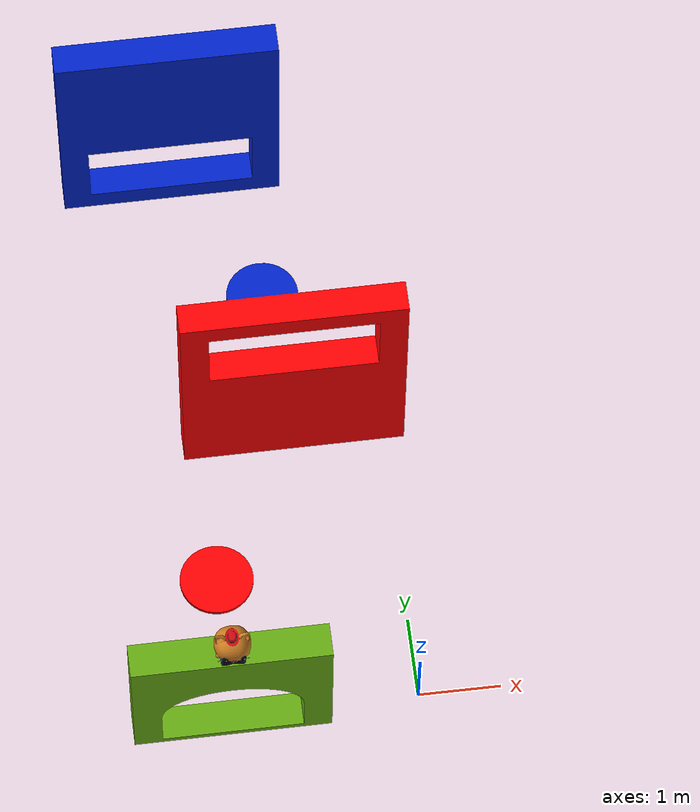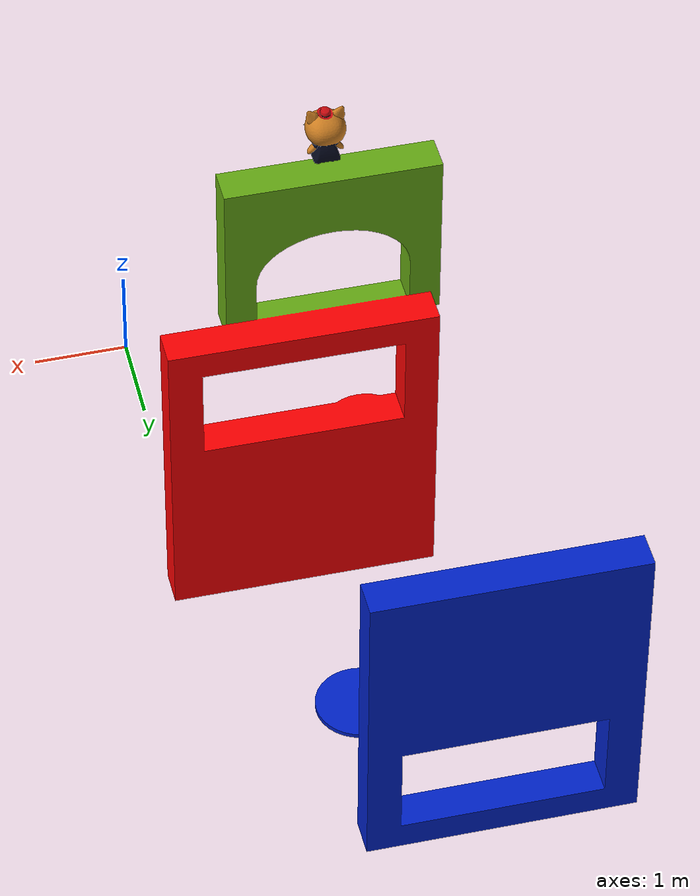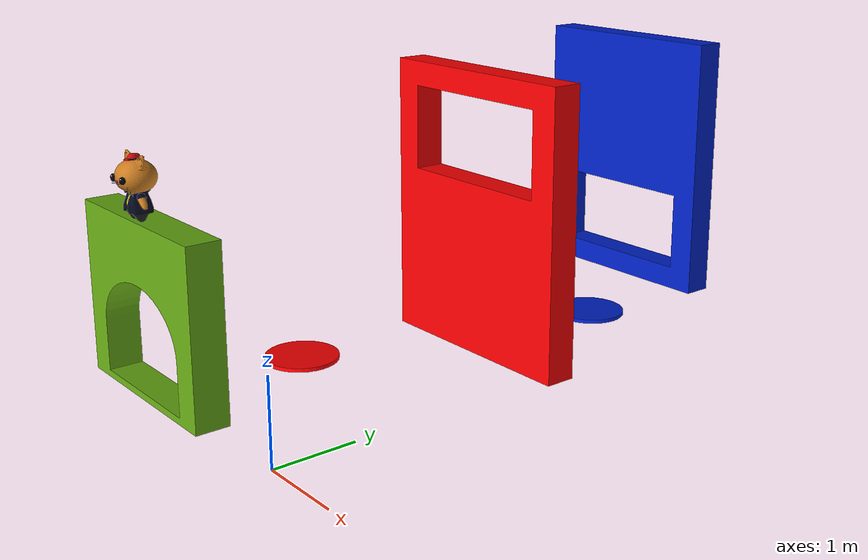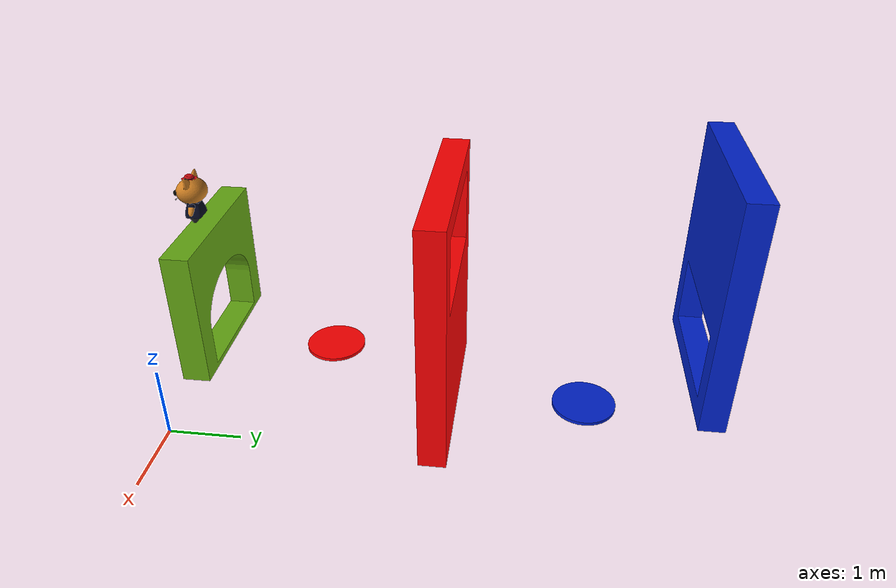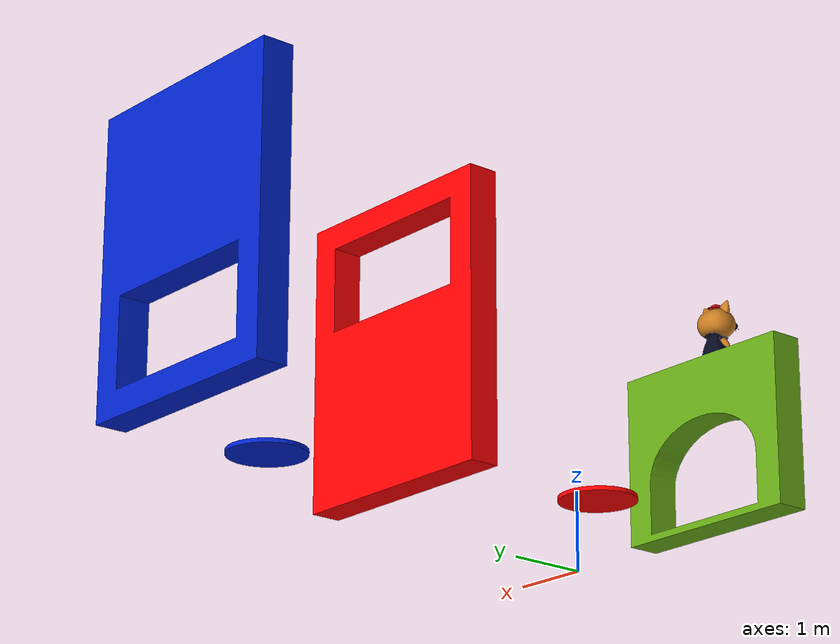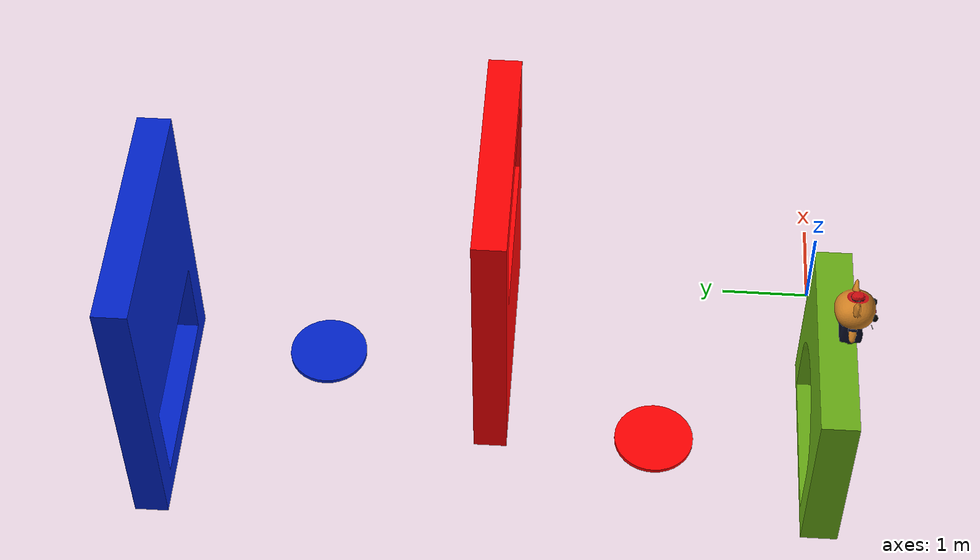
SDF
<?xml version="1.0"?>
<sdf version="1.6">
  <model name="vision_obstacle">
    <static>true</static>

    <link name="link">

      <!-- VISUAL -->
      <visual name="vision_obstacle_visual">
        <cast_shadows>false</cast_shadows>
        <geometry>
          <mesh>
            <uri>model://vision_obstacle/meshes/obstacle_vision.dae</uri>
            <scale>0.4 0.4 0.4</scale>
          </mesh>
        </geometry>
      </visual>

      <!-- COLLISION -->
      <collision name="vision_obstacle_collision">
        <geometry>
          <mesh>
            <uri>model://vision_obstacle/meshes/obstacle_vision.dae</uri>
            <scale>0.4 0.4 0.4</scale>
          </mesh>
        </geometry>
      </collision>

    </link>
  </model>
</sdf>
